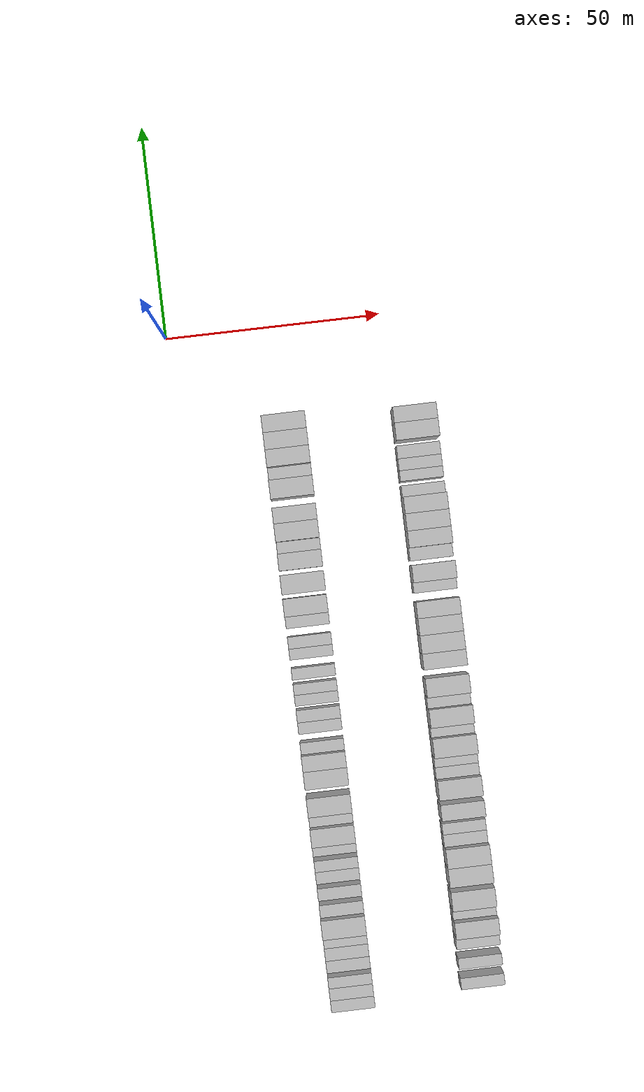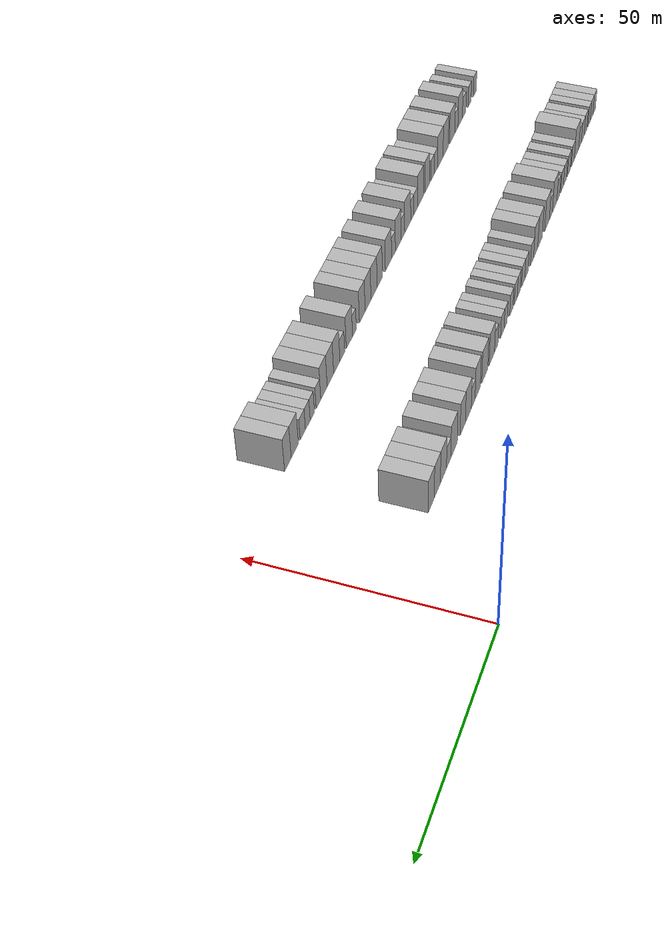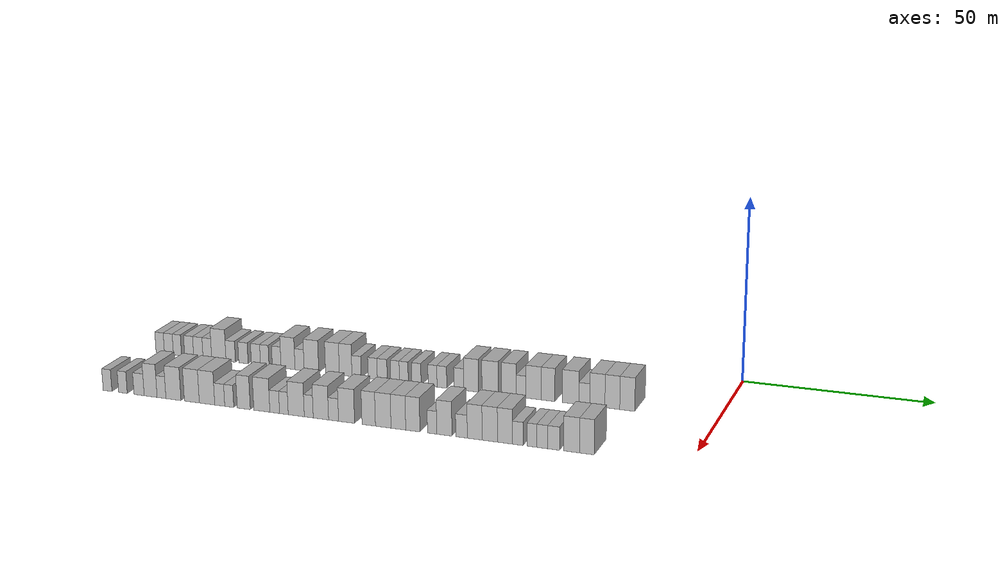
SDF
<sdf version="1.6">
 <world name="default">
  <model name="building_71">
   <static>1</static>
   <pose>25.0000 -156.8699 0 0.000000 0.000000 0.000000</pose>
   <link name="link">
    <pose>0 0 3.00 0 0 0</pose>
    <collision name="collision"><geometry><box><size>10.0000 2.6152 6.0000</size></box></geometry></collision>
    <visual name="visual">
     <cast_shadows>0</cast_shadows>
     <geometry><box><size>10.0000 2.6152 6.0000</size></box></geometry>
     <material>
      <script>
       <uri>model://HANNAS_wall/materials/scripts</uri>
       <uri>model://HANNAS_wall/materials/textures</uri>
       <name>vrc/HANNAS_wall</name>
      </script>
     </material>
    </visual>
   </link>
  </model>
  <model name="building_72">
   <static>1</static>
   <pose>25.0000 -154.1747 0 0.000000 0.000000 0.000000</pose>
   <link name="link">
    <pose>0 0 3.00 0 0 0</pose>
    <collision name="collision"><geometry><box><size>10.0000 2.7751 6.0000</size></box></geometry></collision>
    <visual name="visual">
     <cast_shadows>0</cast_shadows>
     <geometry><box><size>10.0000 2.7751 6.0000</size></box></geometry>
     <material>
      <script>
       <uri>model://HANNAS_wall/materials/scripts</uri>
       <uri>model://HANNAS_wall/materials/textures</uri>
       <name>vrc/HANNAS_wall</name>
      </script>
     </material>
    </visual>
   </link>
  </model>
  <model name="building_73">
   <static>1</static>
   <pose>25.0000 -151.5324 0 0.000000 0.000000 0.000000</pose>
   <link name="link">
    <pose>0 0 3.00 0 0 0</pose>
    <collision name="collision"><geometry><box><size>10.0000 2.5095 6.0000</size></box></geometry></collision>
    <visual name="visual">
     <cast_shadows>0</cast_shadows>
     <geometry><box><size>10.0000 2.5095 6.0000</size></box></geometry>
     <material>
      <script>
       <uri>model://HANNAS_wall/materials/scripts</uri>
       <uri>model://HANNAS_wall/materials/textures</uri>
       <name>vrc/HANNAS_wall</name>
      </script>
     </material>
    </visual>
   </link>
  </model>
  <model name="building_74">
   <static>1</static>
   <pose>25.0000 -147.9005 0 0.000000 0.000000 0.000000</pose>
   <link name="link">
    <pose>0 0 3.00 0 0 0</pose>
    <collision name="collision"><geometry><box><size>10.0000 2.7543 6.0000</size></box></geometry></collision>
    <visual name="visual">
     <cast_shadows>0</cast_shadows>
     <geometry><box><size>10.0000 2.7543 6.0000</size></box></geometry>
     <material>
      <script>
       <uri>model://HANNAS_wall/materials/scripts</uri>
       <uri>model://HANNAS_wall/materials/textures</uri>
       <name>vrc/HANNAS_wall</name>
      </script>
     </material>
    </visual>
   </link>
  </model>
  <model name="building_75">
   <static>1</static>
   <pose>25.0000 -145.0861 0 0.000000 0.000000 0.000000</pose>
   <link name="link">
    <pose>0 0 3.00 0 0 0</pose>
    <collision name="collision"><geometry><box><size>10.0000 2.8745 6.0000</size></box></geometry></collision>
    <visual name="visual">
     <cast_shadows>0</cast_shadows>
     <geometry><box><size>10.0000 2.8745 6.0000</size></box></geometry>
     <material>
      <script>
       <uri>model://HANNAS_wall/materials/scripts</uri>
       <uri>model://HANNAS_wall/materials/textures</uri>
       <name>vrc/HANNAS_wall</name>
      </script>
     </material>
    </visual>
   </link>
  </model>
  <model name="building_76">
   <static>1</static>
   <pose>25.0000 -142.3227 0 0.000000 0.000000 0.000000</pose>
   <link name="link">
    <pose>0 0 3.00 0 0 0</pose>
    <collision name="collision"><geometry><box><size>10.0000 2.6524 6.0000</size></box></geometry></collision>
    <visual name="visual">
     <cast_shadows>0</cast_shadows>
     <geometry><box><size>10.0000 2.6524 6.0000</size></box></geometry>
     <material>
      <script>
       <uri>model://HANNAS_wall/materials/scripts</uri>
       <uri>model://HANNAS_wall/materials/textures</uri>
       <name>vrc/HANNAS_wall</name>
      </script>
     </material>
    </visual>
   </link>
  </model>
  <model name="building_77">
   <static>1</static>
   <pose>25.0000 -138.8195 0 0.000000 0.000000 0.000000</pose>
   <link name="link">
    <pose>0 0 4.50 0 0 0</pose>
    <collision name="collision"><geometry><box><size>10.0000 4.3539 9.0000</size></box></geometry></collision>
    <visual name="visual">
     <cast_shadows>0</cast_shadows>
     <geometry><box><size>10.0000 4.3539 9.0000</size></box></geometry>
     <material>
      <script>
       <uri>model://HANNAS_wall/materials/scripts</uri>
       <uri>model://HANNAS_wall/materials/textures</uri>
       <name>vrc/HANNAS_wall</name>
      </script>
     </material>
    </visual>
   </link>
  </model>
  <model name="building_78">
   <static>1</static>
   <pose>25.0000 -135.2110 0 0.000000 0.000000 0.000000</pose>
   <link name="link">
    <pose>0 0 3.00 0 0 0</pose>
    <collision name="collision"><geometry><box><size>10.0000 2.8632 6.0000</size></box></geometry></collision>
    <visual name="visual">
     <cast_shadows>0</cast_shadows>
     <geometry><box><size>10.0000 2.8632 6.0000</size></box></geometry>
     <material>
      <script>
       <uri>model://HANNAS_wall/materials/scripts</uri>
       <uri>model://HANNAS_wall/materials/textures</uri>
       <name>vrc/HANNAS_wall</name>
      </script>
     </material>
    </visual>
   </link>
  </model>
  <model name="building_79">
   <static>1</static>
   <pose>25.0000 -131.3735 0 0.000000 0.000000 0.000000</pose>
   <link name="link">
    <pose>0 0 3.00 0 0 0</pose>
    <collision name="collision"><geometry><box><size>10.0000 2.8119 6.0000</size></box></geometry></collision>
    <visual name="visual">
     <cast_shadows>0</cast_shadows>
     <geometry><box><size>10.0000 2.8119 6.0000</size></box></geometry>
     <material>
      <script>
       <uri>model://HANNAS_wall/materials/scripts</uri>
       <uri>model://HANNAS_wall/materials/textures</uri>
       <name>vrc/HANNAS_wall</name>
      </script>
     </material>
    </visual>
   </link>
  </model>
  <model name="building_80">
   <static>1</static>
   <pose>25.0000 -127.5996 0 0.000000 0.000000 0.000000</pose>
   <link name="link">
    <pose>0 0 3.00 0 0 0</pose>
    <collision name="collision"><geometry><box><size>10.0000 2.7359 6.0000</size></box></geometry></collision>
    <visual name="visual">
     <cast_shadows>0</cast_shadows>
     <geometry><box><size>10.0000 2.7359 6.0000</size></box></geometry>
     <material>
      <script>
       <uri>model://HANNAS_wall/materials/scripts</uri>
       <uri>model://HANNAS_wall/materials/textures</uri>
       <name>vrc/HANNAS_wall</name>
      </script>
     </material>
    </visual>
   </link>
  </model>
  <model name="building_81">
   <static>1</static>
   <pose>25.0000 -124.9582 0 0.000000 0.000000 0.000000</pose>
   <link name="link">
    <pose>0 0 3.00 0 0 0</pose>
    <collision name="collision"><geometry><box><size>10.0000 2.5468 6.0000</size></box></geometry></collision>
    <visual name="visual">
     <cast_shadows>0</cast_shadows>
     <geometry><box><size>10.0000 2.5468 6.0000</size></box></geometry>
     <material>
      <script>
       <uri>model://HANNAS_wall/materials/scripts</uri>
       <uri>model://HANNAS_wall/materials/textures</uri>
       <name>vrc/HANNAS_wall</name>
      </script>
     </material>
    </visual>
   </link>
  </model>
  <model name="building_82">
   <static>1</static>
   <pose>25.0000 -121.3932 0 0.000000 0.000000 0.000000</pose>
   <link name="link">
    <pose>0 0 3.00 0 0 0</pose>
    <collision name="collision"><geometry><box><size>10.0000 2.5833 6.0000</size></box></geometry></collision>
    <visual name="visual">
     <cast_shadows>0</cast_shadows>
     <geometry><box><size>10.0000 2.5833 6.0000</size></box></geometry>
     <material>
      <script>
       <uri>model://HANNAS_wall/materials/scripts</uri>
       <uri>model://HANNAS_wall/materials/textures</uri>
       <name>vrc/HANNAS_wall</name>
      </script>
     </material>
    </visual>
   </link>
  </model>
  <model name="building_83">
   <static>1</static>
   <pose>25.0000 -118.0275 0 0.000000 0.000000 0.000000</pose>
   <link name="link">
    <pose>0 0 4.50 0 0 0</pose>
    <collision name="collision"><geometry><box><size>10.0000 4.1481 9.0000</size></box></geometry></collision>
    <visual name="visual">
     <cast_shadows>0</cast_shadows>
     <geometry><box><size>10.0000 4.1481 9.0000</size></box></geometry>
     <material>
      <script>
       <uri>model://HANNAS_wall/materials/scripts</uri>
       <uri>model://HANNAS_wall/materials/textures</uri>
       <name>vrc/HANNAS_wall</name>
      </script>
     </material>
    </visual>
   </link>
  </model>
  <model name="building_84">
   <static>1</static>
   <pose>25.0000 -114.6011 0 0.000000 0.000000 0.000000</pose>
   <link name="link">
    <pose>0 0 3.00 0 0 0</pose>
    <collision name="collision"><geometry><box><size>10.0000 2.7046 6.0000</size></box></geometry></collision>
    <visual name="visual">
     <cast_shadows>0</cast_shadows>
     <geometry><box><size>10.0000 2.7046 6.0000</size></box></geometry>
     <material>
      <script>
       <uri>model://HANNAS_wall/materials/scripts</uri>
       <uri>model://HANNAS_wall/materials/textures</uri>
       <name>vrc/HANNAS_wall</name>
      </script>
     </material>
    </visual>
   </link>
  </model>
  <model name="building_85">
   <static>1</static>
   <pose>25.0000 -111.1026 0 0.000000 0.000000 0.000000</pose>
   <link name="link">
    <pose>0 0 4.50 0 0 0</pose>
    <collision name="collision"><geometry><box><size>10.0000 4.2925 9.0000</size></box></geometry></collision>
    <visual name="visual">
     <cast_shadows>0</cast_shadows>
     <geometry><box><size>10.0000 4.2925 9.0000</size></box></geometry>
     <material>
      <script>
       <uri>model://HANNAS_wall/materials/scripts</uri>
       <uri>model://HANNAS_wall/materials/textures</uri>
       <name>vrc/HANNAS_wall</name>
      </script>
     </material>
    </visual>
   </link>
  </model>
  <model name="building_86">
   <static>1</static>
   <pose>25.0000 -104.9370 0 0.000000 0.000000 0.000000</pose>
   <link name="link">
    <pose>0 0 4.50 0 0 0</pose>
    <collision name="collision"><geometry><box><size>10.0000 4.0387 9.0000</size></box></geometry></collision>
    <visual name="visual">
     <cast_shadows>0</cast_shadows>
     <geometry><box><size>10.0000 4.0387 9.0000</size></box></geometry>
     <material>
      <script>
       <uri>model://HANNAS_wall/materials/scripts</uri>
       <uri>model://HANNAS_wall/materials/textures</uri>
       <name>vrc/HANNAS_wall</name>
      </script>
     </material>
    </visual>
   </link>
  </model>
  <model name="building_87">
   <static>1</static>
   <pose>25.0000 -101.0967 0 0.000000 0.000000 0.000000</pose>
   <link name="link">
    <pose>0 0 4.50 0 0 0</pose>
    <collision name="collision"><geometry><box><size>10.0000 3.6418 9.0000</size></box></geometry></collision>
    <visual name="visual">
     <cast_shadows>0</cast_shadows>
     <geometry><box><size>10.0000 3.6418 9.0000</size></box></geometry>
     <material>
      <script>
       <uri>model://HANNAS_wall/materials/scripts</uri>
       <uri>model://HANNAS_wall/materials/textures</uri>
       <name>vrc/HANNAS_wall</name>
      </script>
     </material>
    </visual>
   </link>
  </model>
  <model name="building_88">
   <static>1</static>
   <pose>25.0000 -97.9324 0 0.000000 0.000000 0.000000</pose>
   <link name="link">
    <pose>0 0 3.00 0 0 0</pose>
    <collision name="collision"><geometry><box><size>10.0000 2.6870 6.0000</size></box></geometry></collision>
    <visual name="visual">
     <cast_shadows>0</cast_shadows>
     <geometry><box><size>10.0000 2.6870 6.0000</size></box></geometry>
     <material>
      <script>
       <uri>model://HANNAS_wall/materials/scripts</uri>
       <uri>model://HANNAS_wall/materials/textures</uri>
       <name>vrc/HANNAS_wall</name>
      </script>
     </material>
    </visual>
   </link>
  </model>
  <model name="building_89">
   <static>1</static>
   <pose>25.0000 -93.2721 0 0.000000 0.000000 0.000000</pose>
   <link name="link">
    <pose>0 0 3.00 0 0 0</pose>
    <collision name="collision"><geometry><box><size>10.0000 2.6334 6.0000</size></box></geometry></collision>
    <visual name="visual">
     <cast_shadows>0</cast_shadows>
     <geometry><box><size>10.0000 2.6334 6.0000</size></box></geometry>
     <material>
      <script>
       <uri>model://HANNAS_wall/materials/scripts</uri>
       <uri>model://HANNAS_wall/materials/textures</uri>
       <name>vrc/HANNAS_wall</name>
      </script>
     </material>
    </visual>
   </link>
  </model>
  <model name="building_90">
   <static>1</static>
   <pose>25.0000 -90.5379 0 0.000000 0.000000 0.000000</pose>
   <link name="link">
    <pose>0 0 3.00 0 0 0</pose>
    <collision name="collision"><geometry><box><size>10.0000 2.8350 6.0000</size></box></geometry></collision>
    <visual name="visual">
     <cast_shadows>0</cast_shadows>
     <geometry><box><size>10.0000 2.8350 6.0000</size></box></geometry>
     <material>
      <script>
       <uri>model://HANNAS_wall/materials/scripts</uri>
       <uri>model://HANNAS_wall/materials/textures</uri>
       <name>vrc/HANNAS_wall</name>
      </script>
     </material>
    </visual>
   </link>
  </model>
  <model name="building_91">
   <static>1</static>
   <pose>25.0000 -86.8742 0 0.000000 0.000000 0.000000</pose>
   <link name="link">
    <pose>0 0 3.00 0 0 0</pose>
    <collision name="collision"><geometry><box><size>10.0000 2.4924 6.0000</size></box></geometry></collision>
    <visual name="visual">
     <cast_shadows>0</cast_shadows>
     <geometry><box><size>10.0000 2.4924 6.0000</size></box></geometry>
     <material>
      <script>
       <uri>model://HANNAS_wall/materials/scripts</uri>
       <uri>model://HANNAS_wall/materials/textures</uri>
       <name>vrc/HANNAS_wall</name>
      </script>
     </material>
    </visual>
   </link>
  </model>
  <model name="building_92">
   <static>1</static>
   <pose>25.0000 -84.3740 0 0.000000 0.000000 0.000000</pose>
   <link name="link">
    <pose>0 0 3.00 0 0 0</pose>
    <collision name="collision"><geometry><box><size>10.0000 2.5080 6.0000</size></box></geometry></collision>
    <visual name="visual">
     <cast_shadows>0</cast_shadows>
     <geometry><box><size>10.0000 2.5080 6.0000</size></box></geometry>
     <material>
      <script>
       <uri>model://HANNAS_wall/materials/scripts</uri>
       <uri>model://HANNAS_wall/materials/textures</uri>
       <name>vrc/HANNAS_wall</name>
      </script>
     </material>
    </visual>
   </link>
  </model>
  <model name="building_93">
   <static>1</static>
   <pose>25.0000 -80.8099 0 0.000000 0.000000 0.000000</pose>
   <link name="link">
    <pose>0 0 3.00 0 0 0</pose>
    <collision name="collision"><geometry><box><size>10.0000 2.6203 6.0000</size></box></geometry></collision>
    <visual name="visual">
     <cast_shadows>0</cast_shadows>
     <geometry><box><size>10.0000 2.6203 6.0000</size></box></geometry>
     <material>
      <script>
       <uri>model://HANNAS_wall/materials/scripts</uri>
       <uri>model://HANNAS_wall/materials/textures</uri>
       <name>vrc/HANNAS_wall</name>
      </script>
     </material>
    </visual>
   </link>
  </model>
  <model name="building_94">
   <static>1</static>
   <pose>25.0000 -76.2477 0 0.000000 0.000000 0.000000</pose>
   <link name="link">
    <pose>0 0 3.00 0 0 0</pose>
    <collision name="collision"><geometry><box><size>10.0000 2.5042 6.0000</size></box></geometry></collision>
    <visual name="visual">
     <cast_shadows>0</cast_shadows>
     <geometry><box><size>10.0000 2.5042 6.0000</size></box></geometry>
     <material>
      <script>
       <uri>model://HANNAS_wall/materials/scripts</uri>
       <uri>model://HANNAS_wall/materials/textures</uri>
       <name>vrc/HANNAS_wall</name>
      </script>
     </material>
    </visual>
   </link>
  </model>
  <model name="building_95">
   <static>1</static>
   <pose>25.0000 -73.6357 0 0.000000 0.000000 0.000000</pose>
   <link name="link">
    <pose>0 0 3.00 0 0 0</pose>
    <collision name="collision"><geometry><box><size>10.0000 2.7198 6.0000</size></box></geometry></collision>
    <visual name="visual">
     <cast_shadows>0</cast_shadows>
     <geometry><box><size>10.0000 2.7198 6.0000</size></box></geometry>
     <material>
      <script>
       <uri>model://HANNAS_wall/materials/scripts</uri>
       <uri>model://HANNAS_wall/materials/textures</uri>
       <name>vrc/HANNAS_wall</name>
      </script>
     </material>
    </visual>
   </link>
  </model>
  <model name="building_96">
   <static>1</static>
   <pose>25.0000 -68.9096 0 0.000000 0.000000 0.000000</pose>
   <link name="link">
    <pose>0 0 3.00 0 0 0</pose>
    <collision name="collision"><geometry><box><size>10.0000 2.7323 6.0000</size></box></geometry></collision>
    <visual name="visual">
     <cast_shadows>0</cast_shadows>
     <geometry><box><size>10.0000 2.7323 6.0000</size></box></geometry>
     <material>
      <script>
       <uri>model://HANNAS_wall/materials/scripts</uri>
       <uri>model://HANNAS_wall/materials/textures</uri>
       <name>vrc/HANNAS_wall</name>
      </script>
     </material>
    </visual>
   </link>
  </model>
  <model name="building_97">
   <static>1</static>
   <pose>25.0000 -65.5056 0 0.000000 0.000000 0.000000</pose>
   <link name="link">
    <pose>0 0 4.50 0 0 0</pose>
    <collision name="collision"><geometry><box><size>10.0000 4.0756 9.0000</size></box></geometry></collision>
    <visual name="visual">
     <cast_shadows>0</cast_shadows>
     <geometry><box><size>10.0000 4.0756 9.0000</size></box></geometry>
     <material>
      <script>
       <uri>model://HANNAS_wall/materials/scripts</uri>
       <uri>model://HANNAS_wall/materials/textures</uri>
       <name>vrc/HANNAS_wall</name>
      </script>
     </material>
    </visual>
   </link>
  </model>
  <model name="building_98">
   <static>1</static>
   <pose>25.0000 -60.2449 0 0.000000 0.000000 0.000000</pose>
   <link name="link">
    <pose>0 0 4.50 0 0 0</pose>
    <collision name="collision"><geometry><box><size>10.0000 4.4459 9.0000</size></box></geometry></collision>
    <visual name="visual">
     <cast_shadows>0</cast_shadows>
     <geometry><box><size>10.0000 4.4459 9.0000</size></box></geometry>
     <material>
      <script>
       <uri>model://HANNAS_wall/materials/scripts</uri>
       <uri>model://HANNAS_wall/materials/textures</uri>
       <name>vrc/HANNAS_wall</name>
      </script>
     </material>
    </visual>
   </link>
  </model>
  <model name="building_99">
   <static>1</static>
   <pose>25.0000 -55.0617 0 0.000000 0.000000 0.000000</pose>
   <link name="link">
    <pose>0 0 4.50 0 0 0</pose>
    <collision name="collision"><geometry><box><size>10.0000 3.9203 9.0000</size></box></geometry></collision>
    <visual name="visual">
     <cast_shadows>0</cast_shadows>
     <geometry><box><size>10.0000 3.9203 9.0000</size></box></geometry>
     <material>
      <script>
       <uri>model://HANNAS_wall/materials/scripts</uri>
       <uri>model://HANNAS_wall/materials/textures</uri>
       <name>vrc/HANNAS_wall</name>
      </script>
     </material>
    </visual>
   </link>
  </model>
  <model name="building_100">
   <static>1</static>
   <pose>25.0000 -51.7469 0 0.000000 0.000000 0.000000</pose>
   <link name="link">
    <pose>0 0 3.00 0 0 0</pose>
    <collision name="collision"><geometry><box><size>10.0000 2.7094 6.0000</size></box></geometry></collision>
    <visual name="visual">
     <cast_shadows>0</cast_shadows>
     <geometry><box><size>10.0000 2.7094 6.0000</size></box></geometry>
     <material>
      <script>
       <uri>model://HANNAS_wall/materials/scripts</uri>
       <uri>model://HANNAS_wall/materials/textures</uri>
       <name>vrc/HANNAS_wall</name>
      </script>
     </material>
    </visual>
   </link>
  </model>
  <model name="building_101">
   <static>1</static>
   <pose>25.0000 -48.3024 0 0.000000 0.000000 0.000000</pose>
   <link name="link">
    <pose>0 0 4.50 0 0 0</pose>
    <collision name="collision"><geometry><box><size>10.0000 4.1795 9.0000</size></box></geometry></collision>
    <visual name="visual">
     <cast_shadows>0</cast_shadows>
     <geometry><box><size>10.0000 4.1795 9.0000</size></box></geometry>
     <material>
      <script>
       <uri>model://HANNAS_wall/materials/scripts</uri>
       <uri>model://HANNAS_wall/materials/textures</uri>
       <name>vrc/HANNAS_wall</name>
      </script>
     </material>
    </visual>
   </link>
  </model>
  <model name="building_102">
   <static>1</static>
   <pose>25.0000 -44.3895 0 0.000000 0.000000 0.000000</pose>
   <link name="link">
    <pose>0 0 4.50 0 0 0</pose>
    <collision name="collision"><geometry><box><size>10.0000 3.6463 9.0000</size></box></geometry></collision>
    <visual name="visual">
     <cast_shadows>0</cast_shadows>
     <geometry><box><size>10.0000 3.6463 9.0000</size></box></geometry>
     <material>
      <script>
       <uri>model://HANNAS_wall/materials/scripts</uri>
       <uri>model://HANNAS_wall/materials/textures</uri>
       <name>vrc/HANNAS_wall</name>
      </script>
     </material>
    </visual>
   </link>
  </model>
  <model name="building_103">
   <static>1</static>
   <pose>25.0000 -38.3676 0 0.000000 0.000000 0.000000</pose>
   <link name="link">
    <pose>0 0 4.50 0 0 0</pose>
    <collision name="collision"><geometry><box><size>10.0000 4.3975 9.0000</size></box></geometry></collision>
    <visual name="visual">
     <cast_shadows>0</cast_shadows>
     <geometry><box><size>10.0000 4.3975 9.0000</size></box></geometry>
     <material>
      <script>
       <uri>model://HANNAS_wall/materials/scripts</uri>
       <uri>model://HANNAS_wall/materials/textures</uri>
       <name>vrc/HANNAS_wall</name>
      </script>
     </material>
    </visual>
   </link>
  </model>
  <model name="building_104">
   <static>1</static>
   <pose>25.0000 -34.7043 0 0.000000 0.000000 0.000000</pose>
   <link name="link">
    <pose>0 0 3.00 0 0 0</pose>
    <collision name="collision"><geometry><box><size>10.0000 2.9291 6.0000</size></box></geometry></collision>
    <visual name="visual">
     <cast_shadows>0</cast_shadows>
     <geometry><box><size>10.0000 2.9291 6.0000</size></box></geometry>
     <material>
      <script>
       <uri>model://HANNAS_wall/materials/scripts</uri>
       <uri>model://HANNAS_wall/materials/textures</uri>
       <name>vrc/HANNAS_wall</name>
      </script>
     </material>
    </visual>
   </link>
  </model>
  <model name="building_105">
   <static>1</static>
   <pose>25.0000 -31.2295 0 0.000000 0.000000 0.000000</pose>
   <link name="link">
    <pose>0 0 4.50 0 0 0</pose>
    <collision name="collision"><geometry><box><size>10.0000 4.0205 9.0000</size></box></geometry></collision>
    <visual name="visual">
     <cast_shadows>0</cast_shadows>
     <geometry><box><size>10.0000 4.0205 9.0000</size></box></geometry>
     <material>
      <script>
       <uri>model://HANNAS_wall/materials/scripts</uri>
       <uri>model://HANNAS_wall/materials/textures</uri>
       <name>vrc/HANNAS_wall</name>
      </script>
     </material>
    </visual>
   </link>
  </model>
  <model name="building_106">
   <static>1</static>
   <pose>25.0000 -27.2545 0 0.000000 0.000000 0.000000</pose>
   <link name="link">
    <pose>0 0 4.50 0 0 0</pose>
    <collision name="collision"><geometry><box><size>10.0000 3.9294 9.0000</size></box></geometry></collision>
    <visual name="visual">
     <cast_shadows>0</cast_shadows>
     <geometry><box><size>10.0000 3.9294 9.0000</size></box></geometry>
     <material>
      <script>
       <uri>model://HANNAS_wall/materials/scripts</uri>
       <uri>model://HANNAS_wall/materials/textures</uri>
       <name>vrc/HANNAS_wall</name>
      </script>
     </material>
    </visual>
   </link>
  </model>
  <model name="building_107">
   <static>1</static>
   <pose>25.0000 -23.3115 0 0.000000 0.000000 0.000000</pose>
   <link name="link">
    <pose>0 0 4.50 0 0 0</pose>
    <collision name="collision"><geometry><box><size>10.0000 3.9566 9.0000</size></box></geometry></collision>
    <visual name="visual">
     <cast_shadows>0</cast_shadows>
     <geometry><box><size>10.0000 3.9566 9.0000</size></box></geometry>
     <material>
      <script>
       <uri>model://HANNAS_wall/materials/scripts</uri>
       <uri>model://HANNAS_wall/materials/textures</uri>
       <name>vrc/HANNAS_wall</name>
      </script>
     </material>
    </visual>
   </link>
  </model>
  <model name="building_302">
   <static>1</static>
   <pose>55.0000 -155.2413 0 0.000000 0.000000 0.000000</pose>
   <link name="link">
    <pose>0 0 3.00 0 0 0</pose>
    <collision name="collision"><geometry><box><size>10.0000 2.5834 6.0000</size></box></geometry></collision>
    <visual name="visual">
     <cast_shadows>0</cast_shadows>
     <geometry><box><size>10.0000 2.5834 6.0000</size></box></geometry>
     <material>
      <script>
       <uri>model://HANNAS_wall/materials/scripts</uri>
       <uri>model://HANNAS_wall/materials/textures</uri>
       <name>vrc/HANNAS_wall</name>
      </script>
     </material>
    </visual>
   </link>
  </model>
  <model name="building_303">
   <static>1</static>
   <pose>55.0000 -150.6812 0 0.000000 0.000000 0.000000</pose>
   <link name="link">
    <pose>0 0 3.00 0 0 0</pose>
    <collision name="collision"><geometry><box><size>10.0000 2.5369 6.0000</size></box></geometry></collision>
    <visual name="visual">
     <cast_shadows>0</cast_shadows>
     <geometry><box><size>10.0000 2.5369 6.0000</size></box></geometry>
     <material>
      <script>
       <uri>model://HANNAS_wall/materials/scripts</uri>
       <uri>model://HANNAS_wall/materials/textures</uri>
       <name>vrc/HANNAS_wall</name>
      </script>
     </material>
    </visual>
   </link>
  </model>
  <model name="building_304">
   <static>1</static>
   <pose>55.0000 -145.9217 0 0.000000 0.000000 0.000000</pose>
   <link name="link">
    <pose>0 0 3.00 0 0 0</pose>
    <collision name="collision"><geometry><box><size>10.0000 2.9821 6.0000</size></box></geometry></collision>
    <visual name="visual">
     <cast_shadows>0</cast_shadows>
     <geometry><box><size>10.0000 2.9821 6.0000</size></box></geometry>
     <material>
      <script>
       <uri>model://HANNAS_wall/materials/scripts</uri>
       <uri>model://HANNAS_wall/materials/textures</uri>
       <name>vrc/HANNAS_wall</name>
      </script>
     </material>
    </visual>
   </link>
  </model>
  <model name="building_305">
   <static>1</static>
   <pose>55.0000 -142.5431 0 0.000000 0.000000 0.000000</pose>
   <link name="link">
    <pose>0 0 4.50 0 0 0</pose>
    <collision name="collision"><geometry><box><size>10.0000 3.7750 9.0000</size></box></geometry></collision>
    <visual name="visual">
     <cast_shadows>0</cast_shadows>
     <geometry><box><size>10.0000 3.7750 9.0000</size></box></geometry>
     <material>
      <script>
       <uri>model://HANNAS_wall/materials/scripts</uri>
       <uri>model://HANNAS_wall/materials/textures</uri>
       <name>vrc/HANNAS_wall</name>
      </script>
     </material>
    </visual>
   </link>
  </model>
  <model name="building_306">
   <static>1</static>
   <pose>55.0000 -139.3752 0 0.000000 0.000000 0.000000</pose>
   <link name="link">
    <pose>0 0 3.00 0 0 0</pose>
    <collision name="collision"><geometry><box><size>10.0000 2.5608 6.0000</size></box></geometry></collision>
    <visual name="visual">
     <cast_shadows>0</cast_shadows>
     <geometry><box><size>10.0000 2.5608 6.0000</size></box></geometry>
     <material>
      <script>
       <uri>model://HANNAS_wall/materials/scripts</uri>
       <uri>model://HANNAS_wall/materials/textures</uri>
       <name>vrc/HANNAS_wall</name>
      </script>
     </material>
    </visual>
   </link>
  </model>
  <model name="building_307">
   <static>1</static>
   <pose>55.0000 -135.9137 0 0.000000 0.000000 0.000000</pose>
   <link name="link">
    <pose>0 0 4.50 0 0 0</pose>
    <collision name="collision"><geometry><box><size>10.0000 4.3623 9.0000</size></box></geometry></collision>
    <visual name="visual">
     <cast_shadows>0</cast_shadows>
     <geometry><box><size>10.0000 4.3623 9.0000</size></box></geometry>
     <material>
      <script>
       <uri>model://HANNAS_wall/materials/scripts</uri>
       <uri>model://HANNAS_wall/materials/textures</uri>
       <name>vrc/HANNAS_wall</name>
      </script>
     </material>
    </visual>
   </link>
  </model>
  <model name="building_308">
   <static>1</static>
   <pose>55.0000 -130.5868 0 0.000000 0.000000 0.000000</pose>
   <link name="link">
    <pose>0 0 4.50 0 0 0</pose>
    <collision name="collision"><geometry><box><size>10.0000 4.2915 9.0000</size></box></geometry></collision>
    <visual name="visual">
     <cast_shadows>0</cast_shadows>
     <geometry><box><size>10.0000 4.2915 9.0000</size></box></geometry>
     <material>
      <script>
       <uri>model://HANNAS_wall/materials/scripts</uri>
       <uri>model://HANNAS_wall/materials/textures</uri>
       <name>vrc/HANNAS_wall</name>
      </script>
     </material>
    </visual>
   </link>
  </model>
  <model name="building_309">
   <static>1</static>
   <pose>55.0000 -126.2363 0 0.000000 0.000000 0.000000</pose>
   <link name="link">
    <pose>0 0 4.50 0 0 0</pose>
    <collision name="collision"><geometry><box><size>10.0000 4.4095 9.0000</size></box></geometry></collision>
    <visual name="visual">
     <cast_shadows>0</cast_shadows>
     <geometry><box><size>10.0000 4.4095 9.0000</size></box></geometry>
     <material>
      <script>
       <uri>model://HANNAS_wall/materials/scripts</uri>
       <uri>model://HANNAS_wall/materials/textures</uri>
       <name>vrc/HANNAS_wall</name>
      </script>
     </material>
    </visual>
   </link>
  </model>
  <model name="building_310">
   <static>1</static>
   <pose>55.0000 -122.6103 0 0.000000 0.000000 0.000000</pose>
   <link name="link">
    <pose>0 0 3.00 0 0 0</pose>
    <collision name="collision"><geometry><box><size>10.0000 2.8424 6.0000</size></box></geometry></collision>
    <visual name="visual">
     <cast_shadows>0</cast_shadows>
     <geometry><box><size>10.0000 2.8424 6.0000</size></box></geometry>
     <material>
      <script>
       <uri>model://HANNAS_wall/materials/scripts</uri>
       <uri>model://HANNAS_wall/materials/textures</uri>
       <name>vrc/HANNAS_wall</name>
      </script>
     </material>
    </visual>
   </link>
  </model>
  <model name="building_311">
   <static>1</static>
   <pose>55.0000 -119.9070 0 0.000000 0.000000 0.000000</pose>
   <link name="link">
    <pose>0 0 3.00 0 0 0</pose>
    <collision name="collision"><geometry><box><size>10.0000 2.5641 6.0000</size></box></geometry></collision>
    <visual name="visual">
     <cast_shadows>0</cast_shadows>
     <geometry><box><size>10.0000 2.5641 6.0000</size></box></geometry>
     <material>
      <script>
       <uri>model://HANNAS_wall/materials/scripts</uri>
       <uri>model://HANNAS_wall/materials/textures</uri>
       <name>vrc/HANNAS_wall</name>
      </script>
     </material>
    </visual>
   </link>
  </model>
  <model name="building_312">
   <static>1</static>
   <pose>55.0000 -115.7890 0 0.000000 0.000000 0.000000</pose>
   <link name="link">
    <pose>0 0 4.50 0 0 0</pose>
    <collision name="collision"><geometry><box><size>10.0000 3.6720 9.0000</size></box></geometry></collision>
    <visual name="visual">
     <cast_shadows>0</cast_shadows>
     <geometry><box><size>10.0000 3.6720 9.0000</size></box></geometry>
     <material>
      <script>
       <uri>model://HANNAS_wall/materials/scripts</uri>
       <uri>model://HANNAS_wall/materials/textures</uri>
       <name>vrc/HANNAS_wall</name>
      </script>
     </material>
    </visual>
   </link>
  </model>
  <model name="building_313">
   <static>1</static>
   <pose>55.0000 -110.7119 0 0.000000 0.000000 0.000000</pose>
   <link name="link">
    <pose>0 0 4.50 0 0 0</pose>
    <collision name="collision"><geometry><box><size>10.0000 4.4821 9.0000</size></box></geometry></collision>
    <visual name="visual">
     <cast_shadows>0</cast_shadows>
     <geometry><box><size>10.0000 4.4821 9.0000</size></box></geometry>
     <material>
      <script>
       <uri>model://HANNAS_wall/materials/scripts</uri>
       <uri>model://HANNAS_wall/materials/textures</uri>
       <name>vrc/HANNAS_wall</name>
      </script>
     </material>
    </visual>
   </link>
  </model>
  <model name="building_314">
   <static>1</static>
   <pose>55.0000 -107.1196 0 0.000000 0.000000 0.000000</pose>
   <link name="link">
    <pose>0 0 3.00 0 0 0</pose>
    <collision name="collision"><geometry><box><size>10.0000 2.7026 6.0000</size></box></geometry></collision>
    <visual name="visual">
     <cast_shadows>0</cast_shadows>
     <geometry><box><size>10.0000 2.7026 6.0000</size></box></geometry>
     <material>
      <script>
       <uri>model://HANNAS_wall/materials/scripts</uri>
       <uri>model://HANNAS_wall/materials/textures</uri>
       <name>vrc/HANNAS_wall</name>
      </script>
     </material>
    </visual>
   </link>
  </model>
  <model name="building_315">
   <static>1</static>
   <pose>55.0000 -104.5618 0 0.000000 0.000000 0.000000</pose>
   <link name="link">
    <pose>0 0 3.00 0 0 0</pose>
    <collision name="collision"><geometry><box><size>10.0000 2.4129 6.0000</size></box></geometry></collision>
    <visual name="visual">
     <cast_shadows>0</cast_shadows>
     <geometry><box><size>10.0000 2.4129 6.0000</size></box></geometry>
     <material>
      <script>
       <uri>model://HANNAS_wall/materials/scripts</uri>
       <uri>model://HANNAS_wall/materials/textures</uri>
       <name>vrc/HANNAS_wall</name>
      </script>
     </material>
    </visual>
   </link>
  </model>
  <model name="building_316">
   <static>1</static>
   <pose>55.0000 -101.1305 0 0.000000 0.000000 0.000000</pose>
   <link name="link">
    <pose>0 0 4.50 0 0 0</pose>
    <collision name="collision"><geometry><box><size>10.0000 4.4496 9.0000</size></box></geometry></collision>
    <visual name="visual">
     <cast_shadows>0</cast_shadows>
     <geometry><box><size>10.0000 4.4496 9.0000</size></box></geometry>
     <material>
      <script>
       <uri>model://HANNAS_wall/materials/scripts</uri>
       <uri>model://HANNAS_wall/materials/textures</uri>
       <name>vrc/HANNAS_wall</name>
      </script>
     </material>
    </visual>
   </link>
  </model>
  <model name="building_317">
   <static>1</static>
   <pose>55.0000 -97.6736 0 0.000000 0.000000 0.000000</pose>
   <link name="link">
    <pose>0 0 3.00 0 0 0</pose>
    <collision name="collision"><geometry><box><size>10.0000 2.4642 6.0000</size></box></geometry></collision>
    <visual name="visual">
     <cast_shadows>0</cast_shadows>
     <geometry><box><size>10.0000 2.4642 6.0000</size></box></geometry>
     <material>
      <script>
       <uri>model://HANNAS_wall/materials/scripts</uri>
       <uri>model://HANNAS_wall/materials/textures</uri>
       <name>vrc/HANNAS_wall</name>
      </script>
     </material>
    </visual>
   </link>
  </model>
  <model name="building_318">
   <static>1</static>
   <pose>55.0000 -94.3391 0 0.000000 0.000000 0.000000</pose>
   <link name="link">
    <pose>0 0 4.50 0 0 0</pose>
    <collision name="collision"><geometry><box><size>10.0000 4.2049 9.0000</size></box></geometry></collision>
    <visual name="visual">
     <cast_shadows>0</cast_shadows>
     <geometry><box><size>10.0000 4.2049 9.0000</size></box></geometry>
     <material>
      <script>
       <uri>model://HANNAS_wall/materials/scripts</uri>
       <uri>model://HANNAS_wall/materials/textures</uri>
       <name>vrc/HANNAS_wall</name>
      </script>
     </material>
    </visual>
   </link>
  </model>
  <model name="building_319">
   <static>1</static>
   <pose>55.0000 -90.8758 0 0.000000 0.000000 0.000000</pose>
   <link name="link">
    <pose>0 0 3.00 0 0 0</pose>
    <collision name="collision"><geometry><box><size>10.0000 2.7216 6.0000</size></box></geometry></collision>
    <visual name="visual">
     <cast_shadows>0</cast_shadows>
     <geometry><box><size>10.0000 2.7216 6.0000</size></box></geometry>
     <material>
      <script>
       <uri>model://HANNAS_wall/materials/scripts</uri>
       <uri>model://HANNAS_wall/materials/textures</uri>
       <name>vrc/HANNAS_wall</name>
      </script>
     </material>
    </visual>
   </link>
  </model>
  <model name="building_320">
   <static>1</static>
   <pose>55.0000 -87.3342 0 0.000000 0.000000 0.000000</pose>
   <link name="link">
    <pose>0 0 4.50 0 0 0</pose>
    <collision name="collision"><geometry><box><size>10.0000 4.3616 9.0000</size></box></geometry></collision>
    <visual name="visual">
     <cast_shadows>0</cast_shadows>
     <geometry><box><size>10.0000 4.3616 9.0000</size></box></geometry>
     <material>
      <script>
       <uri>model://HANNAS_wall/materials/scripts</uri>
       <uri>model://HANNAS_wall/materials/textures</uri>
       <name>vrc/HANNAS_wall</name>
      </script>
     </material>
    </visual>
   </link>
  </model>
  <model name="building_321">
   <static>1</static>
   <pose>55.0000 -81.3434 0 0.000000 0.000000 0.000000</pose>
   <link name="link">
    <pose>0 0 4.50 0 0 0</pose>
    <collision name="collision"><geometry><box><size>10.0000 3.6201 9.0000</size></box></geometry></collision>
    <visual name="visual">
     <cast_shadows>0</cast_shadows>
     <geometry><box><size>10.0000 3.6201 9.0000</size></box></geometry>
     <material>
      <script>
       <uri>model://HANNAS_wall/materials/scripts</uri>
       <uri>model://HANNAS_wall/materials/textures</uri>
       <name>vrc/HANNAS_wall</name>
      </script>
     </material>
    </visual>
   </link>
  </model>
  <model name="building_322">
   <static>1</static>
   <pose>55.0000 -77.4433 0 0.000000 0.000000 0.000000</pose>
   <link name="link">
    <pose>0 0 4.50 0 0 0</pose>
    <collision name="collision"><geometry><box><size>10.0000 4.1800 9.0000</size></box></geometry></collision>
    <visual name="visual">
     <cast_shadows>0</cast_shadows>
     <geometry><box><size>10.0000 4.1800 9.0000</size></box></geometry>
     <material>
      <script>
       <uri>model://HANNAS_wall/materials/scripts</uri>
       <uri>model://HANNAS_wall/materials/textures</uri>
       <name>vrc/HANNAS_wall</name>
      </script>
     </material>
    </visual>
   </link>
  </model>
  <model name="building_323">
   <static>1</static>
   <pose>55.0000 -73.3955 0 0.000000 0.000000 0.000000</pose>
   <link name="link">
    <pose>0 0 4.50 0 0 0</pose>
    <collision name="collision"><geometry><box><size>10.0000 3.9156 9.0000</size></box></geometry></collision>
    <visual name="visual">
     <cast_shadows>0</cast_shadows>
     <geometry><box><size>10.0000 3.9156 9.0000</size></box></geometry>
     <material>
      <script>
       <uri>model://HANNAS_wall/materials/scripts</uri>
       <uri>model://HANNAS_wall/materials/textures</uri>
       <name>vrc/HANNAS_wall</name>
      </script>
     </material>
    </visual>
   </link>
  </model>
  <model name="building_324">
   <static>1</static>
   <pose>55.0000 -69.5537 0 0.000000 0.000000 0.000000</pose>
   <link name="link">
    <pose>0 0 4.50 0 0 0</pose>
    <collision name="collision"><geometry><box><size>10.0000 3.7680 9.0000</size></box></geometry></collision>
    <visual name="visual">
     <cast_shadows>0</cast_shadows>
     <geometry><box><size>10.0000 3.7680 9.0000</size></box></geometry>
     <material>
      <script>
       <uri>model://HANNAS_wall/materials/scripts</uri>
       <uri>model://HANNAS_wall/materials/textures</uri>
       <name>vrc/HANNAS_wall</name>
      </script>
     </material>
    </visual>
   </link>
  </model>
  <model name="building_325">
   <static>1</static>
   <pose>55.0000 -64.4554 0 0.000000 0.000000 0.000000</pose>
   <link name="link">
    <pose>0 0 3.00 0 0 0</pose>
    <collision name="collision"><geometry><box><size>10.0000 2.4287 6.0000</size></box></geometry></collision>
    <visual name="visual">
     <cast_shadows>0</cast_shadows>
     <geometry><box><size>10.0000 2.4287 6.0000</size></box></geometry>
     <material>
      <script>
       <uri>model://HANNAS_wall/materials/scripts</uri>
       <uri>model://HANNAS_wall/materials/textures</uri>
       <name>vrc/HANNAS_wall</name>
      </script>
     </material>
    </visual>
   </link>
  </model>
  <model name="building_326">
   <static>1</static>
   <pose>55.0000 -61.2437 0 0.000000 0.000000 0.000000</pose>
   <link name="link">
    <pose>0 0 4.50 0 0 0</pose>
    <collision name="collision"><geometry><box><size>10.0000 3.9947 9.0000</size></box></geometry></collision>
    <visual name="visual">
     <cast_shadows>0</cast_shadows>
     <geometry><box><size>10.0000 3.9947 9.0000</size></box></geometry>
     <material>
      <script>
       <uri>model://HANNAS_wall/materials/scripts</uri>
       <uri>model://HANNAS_wall/materials/textures</uri>
       <name>vrc/HANNAS_wall</name>
      </script>
     </material>
    </visual>
   </link>
  </model>
  <model name="building_327">
   <static>1</static>
   <pose>55.0000 -56.7486 0 0.000000 0.000000 0.000000</pose>
   <link name="link">
    <pose>0 0 3.00 0 0 0</pose>
    <collision name="collision"><geometry><box><size>10.0000 2.9956 6.0000</size></box></geometry></collision>
    <visual name="visual">
     <cast_shadows>0</cast_shadows>
     <geometry><box><size>10.0000 2.9956 6.0000</size></box></geometry>
     <material>
      <script>
       <uri>model://HANNAS_wall/materials/scripts</uri>
       <uri>model://HANNAS_wall/materials/textures</uri>
       <name>vrc/HANNAS_wall</name>
      </script>
     </material>
    </visual>
   </link>
  </model>
  <model name="building_328">
   <static>1</static>
   <pose>55.0000 -53.3271 0 0.000000 0.000000 0.000000</pose>
   <link name="link">
    <pose>0 0 4.50 0 0 0</pose>
    <collision name="collision"><geometry><box><size>10.0000 3.8474 9.0000</size></box></geometry></collision>
    <visual name="visual">
     <cast_shadows>0</cast_shadows>
     <geometry><box><size>10.0000 3.8474 9.0000</size></box></geometry>
     <material>
      <script>
       <uri>model://HANNAS_wall/materials/scripts</uri>
       <uri>model://HANNAS_wall/materials/textures</uri>
       <name>vrc/HANNAS_wall</name>
      </script>
     </material>
    </visual>
   </link>
  </model>
  <model name="building_329">
   <static>1</static>
   <pose>55.0000 -49.4255 0 0.000000 0.000000 0.000000</pose>
   <link name="link">
    <pose>0 0 4.50 0 0 0</pose>
    <collision name="collision"><geometry><box><size>10.0000 3.9557 9.0000</size></box></geometry></collision>
    <visual name="visual">
     <cast_shadows>0</cast_shadows>
     <geometry><box><size>10.0000 3.9557 9.0000</size></box></geometry>
     <material>
      <script>
       <uri>model://HANNAS_wall/materials/scripts</uri>
       <uri>model://HANNAS_wall/materials/textures</uri>
       <name>vrc/HANNAS_wall</name>
      </script>
     </material>
    </visual>
   </link>
  </model>
  <model name="building_330">
   <static>1</static>
   <pose>55.0000 -45.5225 0 0.000000 0.000000 0.000000</pose>
   <link name="link">
    <pose>0 0 4.50 0 0 0</pose>
    <collision name="collision"><geometry><box><size>10.0000 3.8504 9.0000</size></box></geometry></collision>
    <visual name="visual">
     <cast_shadows>0</cast_shadows>
     <geometry><box><size>10.0000 3.8504 9.0000</size></box></geometry>
     <material>
      <script>
       <uri>model://HANNAS_wall/materials/scripts</uri>
       <uri>model://HANNAS_wall/materials/textures</uri>
       <name>vrc/HANNAS_wall</name>
      </script>
     </material>
    </visual>
   </link>
  </model>
  <model name="building_331">
   <static>1</static>
   <pose>55.0000 -42.2330 0 0.000000 0.000000 0.000000</pose>
   <link name="link">
    <pose>0 0 3.00 0 0 0</pose>
    <collision name="collision"><geometry><box><size>10.0000 2.7287 6.0000</size></box></geometry></collision>
    <visual name="visual">
     <cast_shadows>0</cast_shadows>
     <geometry><box><size>10.0000 2.7287 6.0000</size></box></geometry>
     <material>
      <script>
       <uri>model://HANNAS_wall/materials/scripts</uri>
       <uri>model://HANNAS_wall/materials/textures</uri>
       <name>vrc/HANNAS_wall</name>
      </script>
     </material>
    </visual>
   </link>
  </model>
  <model name="building_332">
   <static>1</static>
   <pose>55.0000 -38.6315 0 0.000000 0.000000 0.000000</pose>
   <link name="link">
    <pose>0 0 3.00 0 0 0</pose>
    <collision name="collision"><geometry><box><size>10.0000 2.4743 6.0000</size></box></geometry></collision>
    <visual name="visual">
     <cast_shadows>0</cast_shadows>
     <geometry><box><size>10.0000 2.4743 6.0000</size></box></geometry>
     <material>
      <script>
       <uri>model://HANNAS_wall/materials/scripts</uri>
       <uri>model://HANNAS_wall/materials/textures</uri>
       <name>vrc/HANNAS_wall</name>
      </script>
     </material>
    </visual>
   </link>
  </model>
  <model name="building_333">
   <static>1</static>
   <pose>55.0000 -36.0127 0 0.000000 0.000000 0.000000</pose>
   <link name="link">
    <pose>0 0 3.00 0 0 0</pose>
    <collision name="collision"><geometry><box><size>10.0000 2.7631 6.0000</size></box></geometry></collision>
    <visual name="visual">
     <cast_shadows>0</cast_shadows>
     <geometry><box><size>10.0000 2.7631 6.0000</size></box></geometry>
     <material>
      <script>
       <uri>model://HANNAS_wall/materials/scripts</uri>
       <uri>model://HANNAS_wall/materials/textures</uri>
       <name>vrc/HANNAS_wall</name>
      </script>
     </material>
    </visual>
   </link>
  </model>
  <model name="building_334">
   <static>1</static>
   <pose>55.0000 -33.1373 0 0.000000 0.000000 0.000000</pose>
   <link name="link">
    <pose>0 0 3.00 0 0 0</pose>
    <collision name="collision"><geometry><box><size>10.0000 2.9876 6.0000</size></box></geometry></collision>
    <visual name="visual">
     <cast_shadows>0</cast_shadows>
     <geometry><box><size>10.0000 2.9876 6.0000</size></box></geometry>
     <material>
      <script>
       <uri>model://HANNAS_wall/materials/scripts</uri>
       <uri>model://HANNAS_wall/materials/textures</uri>
       <name>vrc/HANNAS_wall</name>
      </script>
     </material>
    </visual>
   </link>
  </model>
  <model name="building_335">
   <static>1</static>
   <pose>55.0000 -28.6263 0 0.000000 0.000000 0.000000</pose>
   <link name="link">
    <pose>0 0 4.50 0 0 0</pose>
    <collision name="collision"><geometry><box><size>10.0000 4.0345 9.0000</size></box></geometry></collision>
    <visual name="visual">
     <cast_shadows>0</cast_shadows>
     <geometry><box><size>10.0000 4.0345 9.0000</size></box></geometry>
     <material>
      <script>
       <uri>model://HANNAS_wall/materials/scripts</uri>
       <uri>model://HANNAS_wall/materials/textures</uri>
       <name>vrc/HANNAS_wall</name>
      </script>
     </material>
    </visual>
   </link>
  </model>
  <model name="building_336">
   <static>1</static>
   <pose>55.0000 -24.7777 0 0.000000 0.000000 0.000000</pose>
   <link name="link">
    <pose>0 0 4.50 0 0 0</pose>
    <collision name="collision"><geometry><box><size>10.0000 3.6626 9.0000</size></box></geometry></collision>
    <visual name="visual">
     <cast_shadows>0</cast_shadows>
     <geometry><box><size>10.0000 3.6626 9.0000</size></box></geometry>
     <material>
      <script>
       <uri>model://HANNAS_wall/materials/scripts</uri>
       <uri>model://HANNAS_wall/materials/textures</uri>
       <name>vrc/HANNAS_wall</name>
      </script>
     </material>
    </visual>
   </link>
  </model>
 </world>
</sdf>
